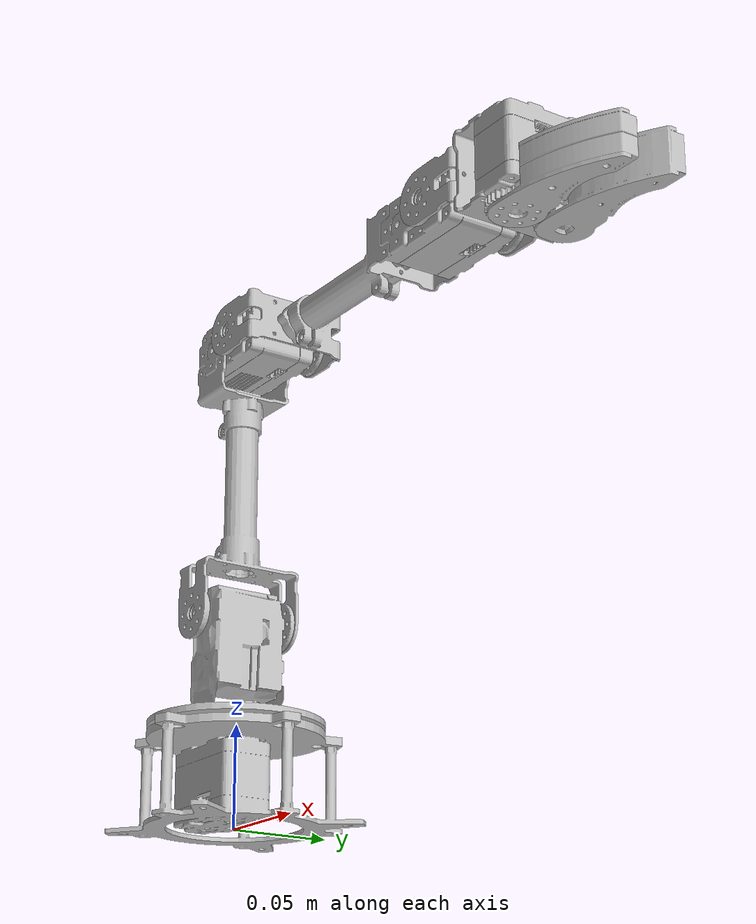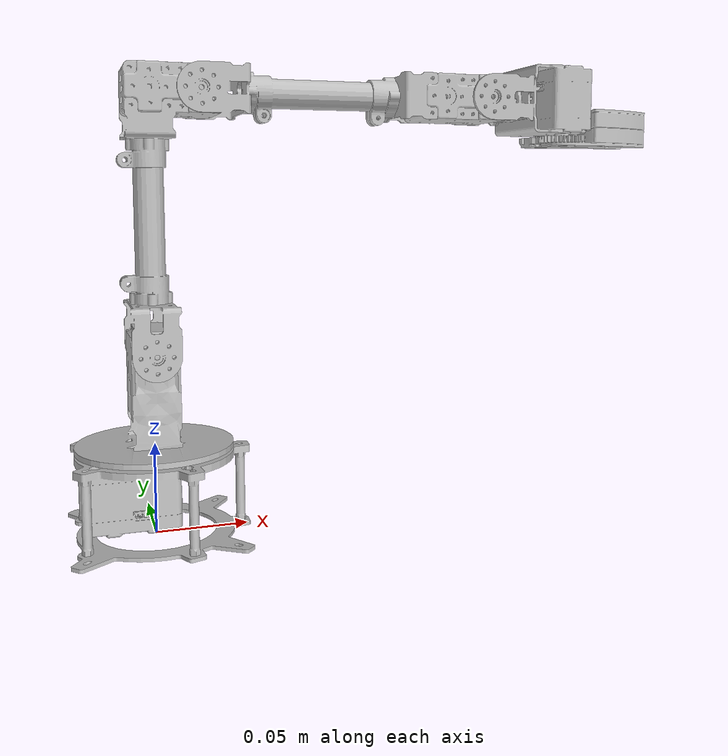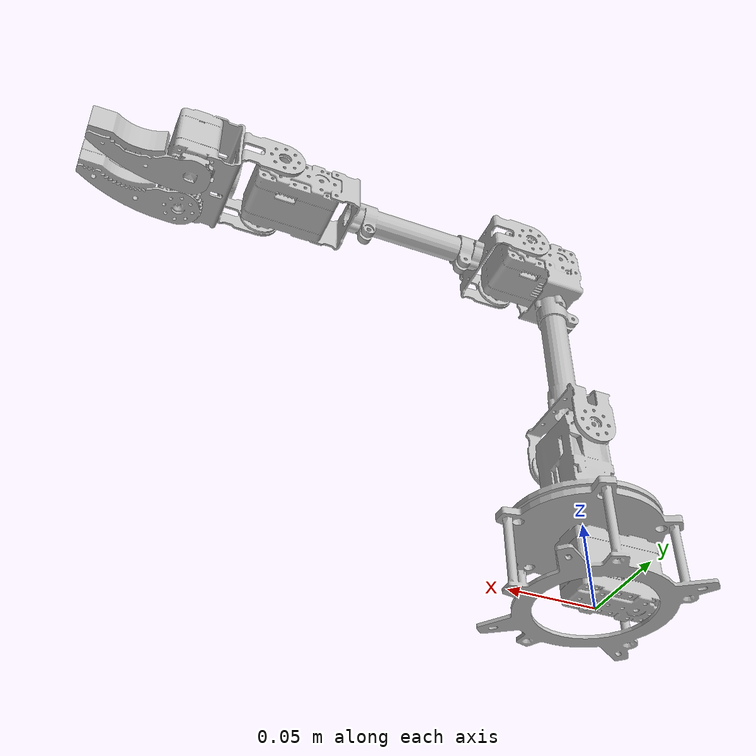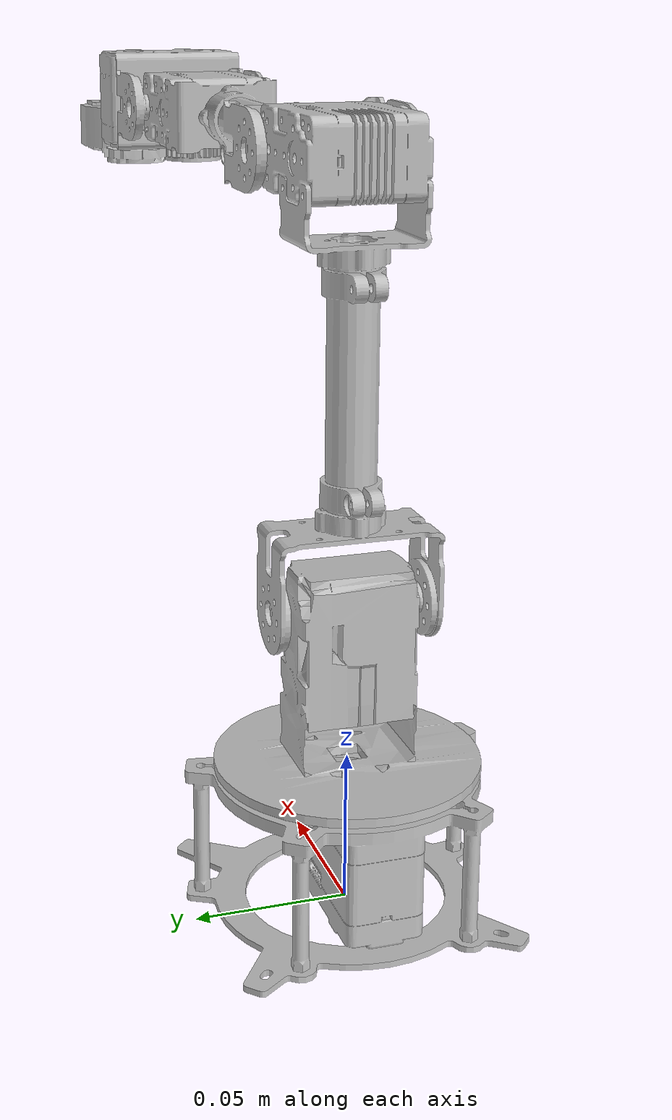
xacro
<?xml version="1.0"?>
<!-- URDF for LSS 4DoF/5DoF Arms -->
<robot xmlns:xacro="http://wiki.ros.org/xacro" name="$(arg name)">

  <!-- Imported elements -->
  <xacro:include filename="$(find lss_arm_description)/urdf/lss_arm_utils.xacro"/>
  <xacro:include filename="$(find lss_arm_description)/urdf/lss_arm.gazebo"/>
  <xacro:include filename="$(find lss_arm_description)/urdf/lss_arm.xacro"/>

  <!-- Parameters -->
  <!-- Flag to enable adapter_bracket platform -->
  <xacro:arg name="adapter_bracket" default="false" />

  <!-- Parameter to select gripper model-->
  <xacro:arg name="dof" default="4"/>

  <!-- Name of the robot (mandatory) -->
  <xacro:arg name="name" default="lss_arm"/>

  <!-- Prefix for all entities -->
  <xacro:arg name="prefix" default="lss_arm_"/>

  <!-- Flag to enable collision geometry for manipulator's arm -->
  <xacro:arg name="collision" default="true"/>

  <!-- Flag to enable safety limits controllers on manipulator joints -->
  <xacro:arg name="safety_limits" default="false"/>
  <!-- Lower and upper margin for position limits of all safety controllers -->
  <xacro:arg name="safety_position_margin" default="0.17453293"/>
  <!-- Parametric k-position factor of all safety controllers -->
  <xacro:arg name="safety_k_position" default="0.3"/>
  <!-- Parametric k-velocity factor of all safety controllers -->
  <xacro:arg name="safety_k_velocity" default="100.0"/>

  <!-- Flag to enable ros2 controllers for manipulator -->
  <xacro:arg name="ros2_control" default="true"/>
  <!-- The ros2_control plugin that should be loaded for the manipulator ('fake', 'sim', 'real' or custom) -->
  <xacro:arg name="ros2_control_plugin" default="sim"/>
  <!-- The filepath to parameters of ROS 2 controllers -->
  <xacro:arg name="ros2_controller_parameters" default="$(find lss_arm_moveit)/config/controllers_$(arg dof)dof.yaml"/>

  <!-- Flag to preserve fixed joints and prevent lumping when generating SDF for Gazebo -->
  <xacro:arg name="gazebo_preserve_fixed_joint" default="false"/>

  <!-- Properties -->
  <!-- Prefixes -->
  <xacro:property name="prefix_arm" value="$(arg prefix)"/>

  <!-- Origin of robot in the world -->
  <xacro:property name="world_name" value="world"/>
  <xacro:property name="origin_xyz" value="0 0 0"/>
  <xacro:property name="origin_rpy" value="0 0 0"/>

  <!-- Offset of gripper with respect to wrist flange -->
  <xacro:property name="gripper_offset_xyz" value="0 0 0"/>
  <xacro:property name="gripper_offset_rpy" value="0 0 0"/>

  <!-- Robot -->
  <!-- Dummy world link that the robot is fixed to -->
  <xacro:lss_arm_dummy_link
    link_name="${world_name}"
    gazebo_preserve_fixed_joint="$(arg gazebo_preserve_fixed_joint)"
  />

  <xacro:unless value="$(arg adapter_bracket)">
    <xacro:property name="joint_0_origin_xyz" value="0 0 0"/>
  </xacro:unless>
  <xacro:if value="$(arg adapter_bracket)">
    <xacro:property name="joint_0_origin_xyz" value="0.063 0 0.2"/>
  </xacro:if>

  <!-- Arm -->
  <xacro:lss_arm
    base_parent="${world_name}"
    prefix="${prefix_arm}"
    origin_xyz="${origin_xyz}"
    origin_rpy="${origin_rpy}"
    collision="$(arg collision)"
    safety_limits="$(arg safety_limits)"
    safety_position_margin="$(arg safety_position_margin)"
    safety_k_position="$(arg safety_k_position)"
    safety_k_velocity="$(arg safety_k_velocity)"
    ros2_control="$(arg ros2_control)"
    ros2_control_plugin="$(arg ros2_control_plugin)"
    gazebo_preserve_fixed_joint="$(arg gazebo_preserve_fixed_joint)"
  />

  <!-- Gripper -->
  <xacro:if value="${'$(arg dof)' == '4'}">
  <xacro:include filename="$(find lss_arm_description)/urdf/lss_gripper_4dof.xacro"/>
    <xacro:gripper_4dof
      lss_gripper="${prefix_arm}gripper_4dof"
      prefix="${prefix_arm}"
      origin_xyz="${gripper_offset_xyz}"
      origin_rpy="${gripper_offset_rpy}"
      collision="$(arg collision)"
      safety_limits="$(arg safety_limits)"
      safety_position_margin="$(arg safety_position_margin)"
      safety_k_position="$(arg safety_k_position)"
      safety_k_velocity="$(arg safety_k_velocity)"
      ros2_control="$(arg ros2_control)"
      ros2_control_plugin="$(arg ros2_control_plugin)"
      gazebo_preserve_fixed_joint="$(arg gazebo_preserve_fixed_joint)"
    />
  </xacro:if>
  <xacro:if value="${'$(arg dof)' == '5'}">
  <xacro:include filename="$(find lss_arm_description)/urdf/lss_gripper_5dof.xacro"/>
    <xacro:gripper_5dof
      lss_gripper="${prefix_arm}gripper_5dof"
      prefix="${prefix_arm}"
      origin_xyz="${gripper_offset_xyz}"
      origin_rpy="${gripper_offset_rpy}"
      collision="$(arg collision)"
      safety_limits="$(arg safety_limits)"
      safety_position_margin="$(arg safety_position_margin)"
      safety_k_position="$(arg safety_k_position)"
      safety_k_velocity="$(arg safety_k_velocity)"
      ros2_control="$(arg ros2_control)"
      ros2_control_plugin="$(arg ros2_control_plugin)"
      gazebo_preserve_fixed_joint="$(arg gazebo_preserve_fixed_joint)"
    />
  </xacro:if>

  <!-- Gazebo - ROS 2 control -->
  <xacro:if value="$(arg ros2_control)">
    <xacro:if value="${'sim' in '$(arg ros2_control_plugin)'}">
      <xacro:ign_ros2_control controller_parameters="$(arg ros2_controller_parameters)"/>
    </xacro:if>
  </xacro:if>

</robot>

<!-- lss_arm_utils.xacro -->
<!-- Macros for general boilerplate -->
<robot xmlns:xacro="http://www.ros.org/wiki/xacro">

  <!-- Imported elements -->
  <xacro:include filename="$(find lss_arm_description)/urdf/lss_arm_inertial.xacro"/>

  <!-- Macro -->
  <xacro:macro name="DarkGreyMaterial">
    <material name="DarkGrey">
      <color rgba="0.75294 0.75294 0.75294 1.0"/>
      <diffuse>${3/255} ${3/255} ${3/255} 1</diffuse>
      <specular>0 0 0 1</specular>
      <emissive>0 0 0 1</emissive>
    </material>
  </xacro:macro>

  <xacro:property name="mesh_offset_rpy" value="0 0 0"/>
  <xacro:macro name="lss_arm_link" params="
    link_name
    mesh
    collision:=true
    mu:=1.0
    mesh_offset_rpy:=${mesh_offset_rpy}
    gazebo_self_collide:=false
  ">
    <link name="${link_name}">
      <visual>
        <origin xyz="0 0 0" rpy="${mesh_offset_rpy}"/>
        <geometry>
          <mesh filename="package://lss_arm_description/meshes/visual/${mesh}.STL"/>
        </geometry>
        <xacro:DarkGreyMaterial/>
      </visual>

      <xacro:if value="${collision}">
        <collision>
          <origin xyz="0 0 0" rpy="${mesh_offset_rpy}"/>
          <geometry>
            <mesh filename="package://lss_arm_description/meshes/collision/${mesh}.STL"/>
          </geometry>
        </collision>
      </xacro:if>

      <xacro:lss_arm_inertial mesh="${mesh}" mesh_offset_rpy="${mesh_offset_rpy}"/>
    </link>

    <gazebo reference="${link_name}">
      <mu1 value="${mu}"/>
      <mu2 value="${mu}"/>
      <xacro:if value="${gazebo_self_collide}">
        <self_collide>true</self_collide>
      </xacro:if>
    </gazebo>
  </xacro:macro>

  <!-- Macro -->
  <xacro:macro name="lss_arm_joint_" params="
    parent
    child
    joint_name
    joint_type
    joint_origin_xyz
    joint_origin_rpy
    joint_axis_xyz:=unset
    joint_lower_limit:=unset
    joint_upper_limit:=unset
    joint_velocity_limit:=unset
    joint_torque_limit:=unset
    joint_damping:=0.0
    joint_friction:=0.0
    mimic_joint:=none
    multiplier:=1.0
    offset:=0.0
    safety_limits:=false
    safety_position_margin:=0.0
    safety_k_position:=0.0
    safety_k_velocity:=0.0
    gazebo_spring_stiffness:=0
    gazebo_spring_reference:=0
    gazebo_preserve_fixed_joint:=false
  ">
    <!-- Make sure limits are set for non-fixed joints -->
    <xacro:unless value="${joint_type == 'fixed'}">
      <xacro:if value="${joint_axis_xyz == 'unset'}">
        <xacro:ERROR_joint_axis_xyz_undefined/>
      </xacro:if>
      <xacro:if value="${joint_lower_limit == 'unset'}">
        <xacro:ERROR_joint_lower_limit_undefined/>
      </xacro:if>
      <xacro:if value="${joint_upper_limit == 'unset'}">
        <xacro:ERROR_joint_upper_limit_undefined/>
      </xacro:if>
      <xacro:if value="${joint_velocity_limit == 'unset'}">
        <xacro:ERROR_joint_velocity_limit_undefined/>
      </xacro:if>
      <xacro:if value="${joint_torque_limit == 'unset'}">
        <xacro:ERROR_joint_torque_limit_undefined/>
      </xacro:if>
    </xacro:unless>

    <joint name="${joint_name}" type="${joint_type}">
      <parent link="${parent}"/>
      <child link="${child}"/>
      <origin xyz="${joint_origin_xyz}" rpy="${joint_origin_rpy}"/>
      <xacro:unless value="${mimic_joint == 'none'}">
        <mimic joint="${mimic_joint}" multiplier="${multiplier}" offset="${offset}"/>
      </xacro:unless>
      <xacro:unless value="${joint_type == 'fixed'}">
        <axis xyz="${joint_axis_xyz}"/>
        <xacro:if value="${joint_type == 'continuous'}">
          <limit effort="${joint_torque_limit}" velocity="${joint_velocity_limit}"/>
        </xacro:if>
        <xacro:unless value="${joint_type == 'continuous'}">
          <limit lower="${joint_lower_limit}" upper="${joint_upper_limit}" effort="${joint_torque_limit}" velocity="${joint_velocity_limit}"/>
        </xacro:unless>
        <xacro:if value="${safety_limits}">
          <safety_controller soft_lower_limit="${joint_lower_limit+safety_position_margin}" soft_upper_limit="${joint_upper_limit-safety_position_margin}" k_position="${safety_k_position}" k_velocity="${safety_k_velocity}"/>
        </xacro:if>
        <dynamics damping="${joint_damping}" friction="${joint_friction}"/>
      </xacro:unless>
    </joint>

    <!-- Transmission for non-fixed joints -->
    <xacro:unless value="${joint_type == 'fixed'}">
      <transmission name="${joint_name}_transmission">
        <type>transmission_interface/SimpleTransmission</type>
        <joint name="${joint_name}">
          <hardwareInterface>hardware_interface/PositionJointInterface</hardwareInterface>
        </joint>
        <actuator name="${joint_name}_actuator">
          <mechanicalReduction>1</mechanicalReduction>
        </actuator>
      </transmission>
    </xacro:unless>

    <!-- Spring stiffness and reference for non-fixed joint -->
    <xacro:unless value="${joint_type == 'fixed'}">
      <gazebo reference="${joint_name}">
        <springStiffness value="${gazebo_spring_stiffness}"/>
        <springReference value="${gazebo_spring_reference}"/>
      </gazebo>
    </xacro:unless>

    <!-- Preserve fixed joint, if desired -->
    <xacro:if value="${joint_type == 'fixed' and gazebo_preserve_fixed_joint}">
      <gazebo reference="${joint_name}">
        <preserveFixedJoint>true</preserveFixedJoint>
        <disableFixedJointLumping>true</disableFixedJointLumping>
      </gazebo>
    </xacro:if>
  </xacro:macro>

  <!-- Macro -->
  <xacro:macro name="lss_arm_virtual_link" params="
    parent
    link_name
    joint_origin_xyz
    joint_origin_rpy
    gazebo_preserve_fixed_joint:=false
  ">
    <xacro:lss_arm_dummy_link
      link_name="${link_name}"
      gazebo_preserve_fixed_joint="${gazebo_preserve_fixed_joint}"
    />

    <joint name="${link_name}_virtual_joint" type="fixed">
      <parent link="${parent}"/>
      <child link="${link_name}"/>
      <origin xyz="${joint_origin_xyz}" rpy="${joint_origin_rpy}"/>
    </joint>
  </xacro:macro>

  <!-- Macro -->
  <xacro:macro name="lss_arm_dummy_link" params="
    link_name
    gazebo_preserve_fixed_joint:=false
  ">
    <link name="${link_name}">
      <xacro:if value="${gazebo_preserve_fixed_joint}">
        <inertial>
          <mass value="1e-5"/>
          <inertia ixx="1e-35" iyy="1e-35" izz="1e-35" ixy="0.0" ixz="0.0" iyz="0.0"/>
        </inertial>
      </xacro:if>
    </link>

    <!-- Preserve fixed joint, if desired -->
    <xacro:if value="${gazebo_preserve_fixed_joint}">
      <gazebo reference="${link_name}_virtual_joint">
        <preserveFixedJoint>true</preserveFixedJoint>
        <disableFixedJointLumping>true</disableFixedJointLumping>
      </gazebo>
    </xacro:if>
  </xacro:macro>

  <!-- Macro -->
  <xacro:macro name="adapter_bracket_base_virtual_link" params="
    parent
    link_name
    joint_origin_xyz
    joint_origin_rpy
    gazebo_preserve_fixed_joint:=false
  ">
    <xacro:adapter_bracket_dummy_link
      link_name="${parent}"
      gazebo_preserve_fixed_joint="${gazebo_preserve_fixed_joint}"
    />

    <joint name="position" type="planar">
      <parent link="${parent}"/>
      <child link="${link_name}"/>
      <origin xyz="${joint_origin_xyz}" rpy="${joint_origin_rpy}"/>
    </joint>
  </xacro:macro>

  <xacro:macro name="adapter_bracket_dummy_link" params="
    link_name
    gazebo_preserve_fixed_joint:=false
  ">
    <link name="${link_name}">
      <xacro:if value="${gazebo_preserve_fixed_joint}">
        <inertial>
          <mass value="1e-5"/>
          <inertia ixx="1e-35" iyy="1e-35" izz="1e-35" ixy="0.0" ixz="0.0" iyz="0.0"/>
        </inertial>
      </xacro:if>
    </link>

    <!-- Preserve fixed joint, if desired -->
    <xacro:if value="${gazebo_preserve_fixed_joint}">
      <gazebo reference="${link_name}_virtual_joint">
        <preserveFixedJoint>true</preserveFixedJoint>
        <disableFixedJointLumping>true</disableFixedJointLumping>
      </gazebo>
    </xacro:if>
  </xacro:macro>

</robot>

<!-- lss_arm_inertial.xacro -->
<!-- Macro for inertial properties of LSS DoF Arm -->
<robot xmlns:xacro="http://www.ros.org/wiki/xacro">

  <!-- Properties -->
  <xacro:property name="link_base_mesh" value="lss_base"/>
  <xacro:property name="link_0_mesh" value="link_0"/>
  <xacro:property name="link_1_mesh" value="link_1"/>
  <xacro:property name="link_2_mesh" value="link_2"/>
  <xacro:property name="link_3_mesh" value="link_3"/>
  <xacro:property name="link_4_mesh_4dof" value="link_4_4dof"/>
  <xacro:property name="link_4_mesh_5dof" value="link_4_5dof"/>
  <xacro:property name="link_5_mesh_5dof" value="link_5_5dof"/>
  <xacro:property name="finger_l_mesh" value="finger_l"/>
  <xacro:property name="finger_r_mesh" value="finger_r"/>

  <!-- Macro -->
  <xacro:property name="mesh_offset_rpy" value="0 0 0"/>
  <xacro:macro name="lss_arm_inertial" params="
    mesh
    mesh_offset_rpy:=${mesh_offset_rpy}
  ">

    <xacro:if value="${mesh == link_base_mesh}">
      <inertial>
          <origin xyz="0 0 0" rpy="${mesh_offset_rpy}" />
          <mass value="0.05" />
          <inertia ixx="4.17127E-06" ixy="-5.07076E-17" ixz="-8.99321E-15" iyy="8.84892E-06" iyz="5.22561E-14" izz="4.67905E-06" />
      </inertial>
    </xacro:if>

    <xacro:if value="${mesh == link_0_mesh}">
      <inertial>
          <origin xyz="-2.73691915043146E-09 0.0078496161601494 0.0255901951226594" rpy="${mesh_offset_rpy}" />
          <mass value="0.0717410813666018" />
          <inertia ixx="3.0636904073993E-05" ixy="9.19910875697947E-11" ixz="-6.99542916495097E-14" iyy="2.37381054307842E-05" iyz="2.14417631554388E-07" izz="4.37325540149466E-05" />
      </inertial>
    </xacro:if>

    <xacro:if value="${mesh == link_1_mesh}">
      <inertial>
          <origin xyz="1.5578217768027E-09 0.0348051841749016 0.00014951767591631" rpy="${mesh_offset_rpy}" />
          <mass value="0.0628875763471834" />
          <inertia ixx="2.20425725995968E-05" ixy="9.19935112458848E-11" ixz="1.70368679861891E-13" iyy="2.29485908974563E-05" iyz="-2.19524118186986E-07" izz="1.89578527653699E-05" />
      </inertial>
    </xacro:if>

    <xacro:if value="${mesh == link_2_mesh}">
      <inertial>
          <origin xyz="-0.112045323028693 0.0336416089233315 0.000234166707606796" rpy="${mesh_offset_rpy}" />
          <mass value="0.0592207297890142" />
          <inertia ixx="1.66333998725443E-05" ixy="-1.03352394963547E-06" ixz="-4.43274108116386E-08" iyy="1.1971383214163E-05" iyz="-2.15005479062966E-07" izz="1.41577057658295E-05" />
      </inertial>
    </xacro:if>

    <xacro:if value="${mesh == link_3_mesh}">
      <inertial>
          <origin xyz="0.119623138465818 0.0411506770766876 0.000345214465821365" rpy="${mesh_offset_rpy}" />
          <mass value="0.0601490353124708" />
          <inertia ixx="1.1113660383281E-05" ixy="-2.67466932607218E-06" ixz="2.01605698642722E-07" iyy="1.79419649434231E-05" iyz="-6.9564477599757E-08" izz="1.45807099366603E-05" />
      </inertial>
    </xacro:if>

    <xacro:if value="${mesh == link_4_mesh_4dof}">
      <inertial>
          <origin xyz="0.0446894562780881 -0.000131072409021604 0.000356231689785028" rpy="${mesh_offset_rpy}" />
          <mass value="0.0556319659037934" />
          <inertia ixx="1.81337749108788E-05" ixy="-6.99513846908487E-14" ixz="9.19941036664484E-11" iyy="1.49173144124065E-05" iyz="2.14447838213905E-07" izz="9.12796728342695E-06" />
      </inertial>
    </xacro:if>

    <xacro:if value="${mesh == link_4_mesh_5dof}">
      <inertial>
          <origin xyz="0.041227 -1.5305E-06 -0.010489" rpy="${mesh_offset_rpy}" />
          <mass value="0.051733" />
          <inertia ixx="1.3345E-05" ixy="2.5814E-10" ixz="-1.8101E-07" iyy="1.6468E-05" iyz="-7.6602E-10" izz="8.1683E-06" />
      </inertial>
    </xacro:if>

    <xacro:if value="${mesh == link_5_mesh_5dof}">
      <inertial>
          <origin xyz="0.033089 -0.0086089 4.6839E-05" rpy="${mesh_offset_rpy}" />
          <mass value="0.050102" />
          <inertia ixx="1.6176E-05" ixy="-9.3694E-14" ixz="9.1972E-11" iyy="1.2688E-05" iyz="2.1445E-07" izz="8.3014E-06" />
      </inertial>
    </xacro:if>

    <xacro:if value="${mesh == finger_l_mesh}">
      <inertial>
          <origin xyz="0.0310712366675979 -0.0140452526813673 0.00133953163684892" rpy="${mesh_offset_rpy}" />
          <mass value="0.0152813047822834" />
          <inertia ixx="6.12119941271843E-07" ixy="-1.61044889315886E-12" ixz="-4.41621763353496E-07" iyy="2.99804070646807E-06" iyz="-3.8879675590965E-12" izz="2.54603357212087E-06" />
      </inertial>
    </xacro:if>

    <xacro:if value="${mesh == finger_r_mesh}">
      <inertial>
          <origin xyz="0.0307726942893274 -0.0140975049159748 -0.0013266609885073" rpy="${mesh_offset_rpy}" />
          <mass value="0.0154295568992377" />
          <inertia ixx="6.13242885883712E-07" ixy="-1.69555790218149E-12" ixz="4.41621764601781E-07" iyy="2.99899721506146E-06" iyz="4.09343888509186E-12" izz="2.54715653674288E-06" />
      </inertial>
    </xacro:if>
  </xacro:macro>

</robot>

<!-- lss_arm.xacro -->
<!-- Xacro for LSS Arms -->
<robot xmlns:xacro="http://www.ros.org/wiki/xacro">

  <!-- Imported elements -->
  <xacro:include filename="$(find lss_arm_description)/urdf/lss_arm_utils.xacro"/>
  <xacro:include filename="$(find lss_arm_description)/urdf/lss_arm.ros2_control"/>

  <!-- Properties -->
  <xacro:property name="joint_0_name" value="joint_0"/>
  <xacro:property name="joint_0_type" value="fixed"/>
  <xacro:property name="joint_0_origin_rpy" value="0 0 0"/>
  <xacro:property name="link_0_name" value="link_0"/>
  <xacro:property name="link_0_mu" value="0.3"/>

  <xacro:property name="joint_1_name" value="joint_1"/>
  <xacro:property name="joint_1_type" value="revolute"/>
  <xacro:property name="joint_1_origin_xyz" value="0 0 0.042699975"/>
  <xacro:property name="joint_1_origin_rpy" value="${pi/2} 0 0"/>
  <xacro:property name="joint_1_axis_xyz" value="0 1 0"/>
  <xacro:property name="joint_1_lower_limit" value="${-pi}"/>
  <xacro:property name="joint_1_upper_limit" value="${pi}"/>
  <xacro:property name="joint_1_velocity_limit" value="6.283"/>
  <xacro:property name="joint_1_torque_limit" value="6.5"/>
  <xacro:property name="joint_1_damping" value="0.01"/>
  <xacro:property name="joint_1_friction" value="3.48"/>
  <xacro:property name="link_1_name" value="link_1"/>
  <xacro:property name="link_1_mu" value="0.3"/>

  <xacro:property name="joint_2_name" value="joint_2"/>
  <xacro:property name="joint_2_type" value="revolute"/>
  <xacro:property name="joint_2_origin_xyz" value="0 0.0588000249999991 0"/>
  <xacro:property name="joint_2_origin_rpy" value="0 0 -1.3621104667496"/>
  <xacro:property name="joint_2_axis_xyz" value="0 0 1"/>
  <xacro:property name="joint_2_lower_limit" value="${-125*pi/180}"/>
  <xacro:property name="joint_2_upper_limit" value="${125*pi/180}"/>
  <xacro:property name="joint_2_velocity_limit" value="6.283"/>
  <xacro:property name="joint_2_torque_limit" value="6.5"/>
  <xacro:property name="joint_2_damping" value="0.01"/>
  <xacro:property name="joint_2_friction" value="3.48"/>
  <xacro:property name="link_2_name" value="link_2"/>
  <xacro:property name="link_2_mu" value="0.3"/>

  <xacro:property name="joint_3_name" value="joint_3"/>
  <xacro:property name="joint_3_type" value="revolute"/>
  <xacro:property name="joint_3_origin_xyz" value="-0.12954806230389 0.0533975613048809 0"/>
  <xacro:property name="joint_3_origin_rpy" value="0 0 1.02985068022995"/>
  <xacro:property name="joint_3_axis_xyz" value="0 0 1"/>
  <xacro:property name="joint_3_lower_limit" value="${-110*pi/180}"/>
  <xacro:property name="joint_3_upper_limit" value="${90*pi/180}"/>
  <xacro:property name="joint_3_velocity_limit" value="6.283"/>
  <xacro:property name="joint_3_torque_limit" value="6.5"/>
  <xacro:property name="joint_3_damping" value="0.01"/>
  <xacro:property name="joint_3_friction" value="3.48"/>
  <xacro:property name="link_3_name" value="link_3"/>
  <xacro:property name="link_3_mu" value="0.3"/>

    <!-- Macro -->
    <xacro:property name="default_origin_xyz" value="0 0 0"/>
    <xacro:property name="default_origin_rpy" value="0 0 0"/>
    <xacro:macro name="lss_arm" params="
      base_parent
      prefix
      origin_xyz:=${default_origin_xyz}
      origin_rpy:=${default_origin_rpy}
      collision:=true
      safety_limits:=false
      safety_position_margin:=${pi/180}
      safety_k_position:=0.3
      safety_k_velocity:=100.0
      ros2_control:=true
      ros2_control_plugin:=fake
      gazebo_preserve_fixed_joint:=false
    ">

    <xacro:lss_arm_joint_
    parent="${base_parent}"
    child="${prefix}${link_0_name}"
    joint_name="${prefix}${joint_0_name}"
    joint_type="${joint_0_type}"
    joint_origin_xyz="${joint_0_origin_xyz}"
    joint_origin_rpy="${joint_0_origin_rpy}"
    gazebo_preserve_fixed_joint="${gazebo_preserve_fixed_joint}"
    />
    <xacro:lss_arm_link
    link_name="${prefix}${link_0_name}"
    mesh="${link_0_mesh}"
    collision="${collision}"
    mu="${link_0_mu}"
    />

    <xacro:lss_arm_joint_
    parent="${prefix}${link_0_name}"
    child="${prefix}${link_1_name}"
    joint_name="${prefix}${joint_1_name}"
    joint_type="${joint_1_type}"
    joint_origin_xyz="${joint_1_origin_xyz}"
    joint_origin_rpy="${joint_1_origin_rpy}"
    joint_axis_xyz="${joint_1_axis_xyz}"
    joint_lower_limit="${joint_1_lower_limit}"
    joint_upper_limit="${joint_1_upper_limit}"
    joint_velocity_limit="${joint_1_velocity_limit}"
    joint_torque_limit="${joint_1_torque_limit}"
    joint_damping="${joint_1_damping}"
    joint_friction="${joint_1_friction}"
    safety_limits="${safety_limits}"
    safety_position_margin="${safety_position_margin}"
    safety_k_position="${safety_k_position}"
    safety_k_velocity="${safety_k_velocity}"
    gazebo_preserve_fixed_joint="${gazebo_preserve_fixed_joint}"
    />
    <xacro:lss_arm_link
    link_name="${prefix}${link_1_name}"
    mesh="${link_1_mesh}"
    collision="${collision}"
    mu="${link_1_mu}"
    />

    <xacro:lss_arm_joint_
    parent="${prefix}${link_1_name}"
    child="${prefix}${link_2_name}"
    joint_name="${prefix}${joint_2_name}"
    joint_type="${joint_2_type}"
    joint_origin_xyz="${joint_2_origin_xyz}"
    joint_origin_rpy="${joint_2_origin_rpy}"
    joint_axis_xyz="${joint_2_axis_xyz}"
    joint_lower_limit="${joint_2_lower_limit}"
    joint_upper_limit="${joint_2_upper_limit}"
    joint_velocity_limit="${joint_2_velocity_limit}"
    joint_torque_limit="${joint_2_torque_limit}"
    joint_damping="${joint_2_damping}"
    joint_friction="${joint_2_friction}"
    safety_limits="${safety_limits}"
    safety_position_margin="${safety_position_margin}"
    safety_k_position="${safety_k_position}"
    safety_k_velocity="${safety_k_velocity}"
    gazebo_preserve_fixed_joint="${gazebo_preserve_fixed_joint}"
    />
    <xacro:lss_arm_link
    link_name="${prefix}${link_2_name}"
    mesh="${link_2_mesh}"
    collision="${collision}"
    mu="${link_2_mu}"
    />

    <xacro:lss_arm_joint_
    parent="${prefix}${link_2_name}"
    child="${prefix}${link_3_name}"
    joint_name="${prefix}${joint_3_name}"
    joint_type="${joint_3_type}"
    joint_origin_xyz="${joint_3_origin_xyz}"
    joint_origin_rpy="${joint_3_origin_rpy}"
    joint_axis_xyz="${joint_3_axis_xyz}"
    joint_lower_limit="${joint_3_lower_limit}"
    joint_upper_limit="${joint_3_upper_limit}"
    joint_velocity_limit="${joint_3_velocity_limit}"
    joint_torque_limit="${joint_3_torque_limit}"
    joint_damping="${joint_3_damping}"
    joint_friction="${joint_3_friction}"
    safety_limits="${safety_limits}"
    safety_position_margin="${safety_position_margin}"
    safety_k_position="${safety_k_position}"
    safety_k_velocity="${safety_k_velocity}"
    gazebo_preserve_fixed_joint="${gazebo_preserve_fixed_joint}"
    />
    <xacro:lss_arm_link
    link_name="${prefix}${link_3_name}"
    mesh="${link_3_mesh}"
    collision="${collision}"
    mu="${link_3_mu}"
    />

     <!-- ROS 2 control -->
    <xacro:if value="${ros2_control}">
        <xacro:ros2_control_lss_arm prefix="${prefix}" plugin="${ros2_control_plugin}" command_interface="position"/>
    </xacro:if>

  </xacro:macro>

</robot>

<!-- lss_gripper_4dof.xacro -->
<!-- Xacro for LSS 4DoF Arm Gripper -->
<robot xmlns:xacro="http://www.ros.org/wiki/xacro">

  <!-- Imported elements -->
  <xacro:include filename="$(find lss_arm_description)/urdf/lss_arm_utils.xacro"/>

  <!-- Properties -->
  <xacro:property name="joint_4_name" value="joint_4"/>
  <xacro:property name="joint_4_type" value="revolute"/>
  <xacro:property name="joint_4_origin_xyz" value="0.154274210199929 0.0532325846374996 0"/>
  <xacro:property name="joint_4_origin_rpy" value="0 0 0.332259786519651"/>
  <xacro:property name="joint_4_axis_xyz" value="0 0 1"/>
  <xacro:property name="joint_4_lower_limit" value="${-120*pi/180}"/>
  <xacro:property name="joint_4_upper_limit" value="${120*pi/180}"/>
  <xacro:property name="joint_4_velocity_limit" value="6.283"/>
  <xacro:property name="joint_4_torque_limit" value="6.5"/>
  <xacro:property name="joint_4_damping" value="0.01"/>
  <xacro:property name="joint_4_friction" value="3.48"/>
  <xacro:property name="link_4_name" value="link_4"/>
  <xacro:property name="link_4_mu" value="0.3"/>

  <xacro:property name="joint_finger_1_name" value="joint_5"/>
  <xacro:property name="joint_finger_1_type" value="revolute"/>
  <xacro:property name="joint_finger_1_origin_xyz" value="0.0507999999999996 -0.00273873977545905 -0.0123999999999962"/>
  <xacro:property name="joint_finger_1_origin_rpy" value="0 0 0"/>
  <xacro:property name="joint_finger_1_axis_xyz" value="0 1 0"/>
  <xacro:property name="joint_finger_1_lower_limit" value="0"/>
  <xacro:property name="joint_finger_1_upper_limit" value="${pi/2}"/>
  <xacro:property name="joint_finger_1_velocity_limit" value="6.283"/>
  <xacro:property name="joint_finger_1_torque_limit" value="1.45"/>
  <xacro:property name="joint_finger_1_damping" value="0.01"/>
  <xacro:property name="joint_finger_1_friction" value="0.4"/>
  <xacro:property name="link_finger_1_name" value="finger_l"/>
  <xacro:property name="link_finger_1_mu" value="0.3"/>
  <xacro:property name="link_finger_1_mesh_offset" value="0 0 0"/>

  <xacro:property name="joint_finger_2_name" value="joint_6"/>
  <xacro:property name="joint_finger_2_type" value="revolute"/>
  <xacro:property name="joint_finger_2_origin_xyz" value="0.0507999999999993 -0.00273873977545905 0.0123999999999962"/>
  <xacro:property name="joint_finger_2_origin_rpy" value="0 0 0"/>
  <xacro:property name="joint_finger_2_axis_xyz" value="0 1 0"/>
  <xacro:property name="joint_finger_2_lower_limit" value="${-pi/2}"/>
  <xacro:property name="joint_finger_2_upper_limit" value="0"/>
  <xacro:property name="joint_finger_2_velocity_limit" value="6.283"/>
  <xacro:property name="joint_finger_2_torque_limit" value="1.45"/>
  <xacro:property name="joint_finger_2_damping" value="0.01"/>
  <xacro:property name="joint_finger_2_friction" value="0.4"/>
  <xacro:property name="link_finger_2_name" value="finger_r"/>
  <xacro:property name="link_finger_2_mu" value="0.3"/>
  <xacro:property name="link_finger_2_mesh_offset" value="0 0 0"/>

  <xacro:property name="ee_name" value="ee"/>
  <xacro:property name="ee_origin_xyz" value="0.11 0 0"/>
  <xacro:property name="ee_origin_rpy" value="0 0 0"/>

  <!-- Macro -->
  <xacro:property name="default_origin_xyz" value="0 0 0"/>
  <xacro:property name="default_origin_rpy" value="0 0 0"/>

  <xacro:macro name="gripper_4dof" params="
    lss_gripper
    prefix
    origin_xyz:=${default_origin_xyz}
    origin_rpy:=${default_origin_rpy}
    collision:=true
    safety_limits:=false
    safety_position_margin:=${pi/180}
    safety_k_position:=0.3
    safety_k_velocity:=100.0
    ros2_control:=true
    ros2_control_plugin:=fake
    gazebo_preserve_fixed_joint:=false
  ">

    <xacro:lss_arm_joint_
    parent="${prefix}${link_3_name}"
    child="${prefix}${link_4_name}"
    joint_name="${prefix}${joint_4_name}"
    joint_type="${joint_4_type}"
    joint_origin_xyz="${joint_4_origin_xyz}"
    joint_origin_rpy="${joint_4_origin_rpy}"
    joint_axis_xyz="${joint_4_axis_xyz}"
    joint_lower_limit="${joint_4_lower_limit}"
    joint_upper_limit="${joint_4_upper_limit}"
    joint_velocity_limit="${joint_4_velocity_limit}"
    joint_torque_limit="${joint_4_torque_limit}"
    joint_damping="${joint_4_damping}"
    joint_friction="${joint_4_friction}"
    safety_limits="${safety_limits}"
    safety_position_margin="${safety_position_margin}"
    safety_k_position="${safety_k_position}"
    safety_k_velocity="${safety_k_velocity}"
    gazebo_preserve_fixed_joint="${gazebo_preserve_fixed_joint}"
    />
    <xacro:lss_arm_link
    link_name="${prefix}${link_4_name}"
    mesh="${link_4_mesh_4dof}"
    collision="${collision}"
    mu="${link_4_mu}"
    />

    <!-- Finger 1 -->
    <xacro:lss_arm_joint_
    parent="${prefix}${link_4_name}"
    child="${prefix}${link_finger_1_name}"
    joint_name="${prefix}${joint_finger_1_name}"
    joint_type="${joint_finger_1_type}"
    joint_origin_xyz="${joint_finger_1_origin_xyz}"
    joint_origin_rpy="${joint_finger_1_origin_rpy}"
    joint_axis_xyz="${joint_finger_1_axis_xyz}"
    joint_lower_limit="${joint_finger_1_lower_limit}"
    joint_upper_limit="${joint_finger_1_upper_limit}"
    joint_velocity_limit="${joint_finger_1_velocity_limit}"
    joint_torque_limit="${joint_finger_1_torque_limit}"
    joint_damping="${joint_finger_1_damping}"
    joint_friction="${joint_finger_1_friction}"
    gazebo_preserve_fixed_joint="${gazebo_preserve_fixed_joint}"
    />
    <xacro:lss_arm_link
    link_name="${prefix}${link_finger_1_name}"
    mesh="${finger_l_mesh}"
    collision="${collision}"
    mu="${link_finger_1_mu}"
    mesh_offset_rpy="${link_finger_1_mesh_offset}"
    />

<!-- mimic_joint="${prefix}${joint_finger_1_name}" -->

    <!-- Finger 2 -->
    <xacro:lss_arm_joint_
    parent="${prefix}${link_4_name}"
    child="${prefix}${link_finger_2_name}"
    joint_name="${prefix}${joint_finger_2_name}"
    joint_type="${joint_finger_2_type}"
    joint_origin_xyz="${joint_finger_2_origin_xyz}"
    joint_origin_rpy="${joint_finger_2_origin_rpy}"
    joint_axis_xyz="${joint_finger_2_axis_xyz}"
    joint_lower_limit="${joint_finger_2_lower_limit}"
    joint_upper_limit="${joint_finger_2_upper_limit}"
    joint_velocity_limit="${joint_finger_2_velocity_limit}"
    joint_torque_limit="${joint_finger_2_torque_limit}"
    joint_damping="${joint_finger_2_damping}"
    joint_friction="${joint_finger_2_friction}"
    mimic_joint="none"
    multiplier="-1.0"
    offset="0.0"
    gazebo_preserve_fixed_joint="${gazebo_preserve_fixed_joint}"
    />
    <xacro:lss_arm_link
    link_name="${prefix}${link_finger_2_name}"
    mesh="${finger_r_mesh}"
    collision="${collision}"
    mu="${link_finger_2_mu}"
    mesh_offset_rpy="${link_finger_2_mesh_offset}"
    />

    <!-- End effector -->
    <xacro:lss_arm_virtual_link
    parent="${prefix}${link_4_name}"
    link_name="${prefix}${ee_name}"
    joint_origin_xyz="${ee_origin_xyz}"
    joint_origin_rpy="${ee_origin_rpy}"
    gazebo_preserve_fixed_joint="${gazebo_preserve_fixed_joint}"
    />

  </xacro:macro>

</robot>
